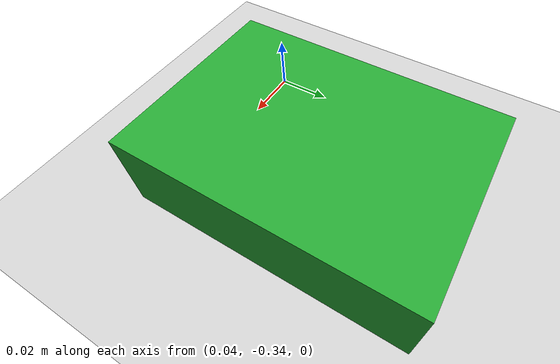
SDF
<sdf version="1.4">
 <world name="default">
  <light name="sun" type="directional">
   <pose>0 0 10 0 -0 0</pose>
   <diffuse>0.8 0.8 0.8 1</diffuse>
   <specular>0.2 0.2 0.2 1</specular>
   <attenuation>
    <range>1000</range>
    <constant>0.9</constant>
    <linear>0.01</linear>
    <quadratic>0.001</quadratic>
   </attenuation>
   <direction>-0.5 0.1 -0.9</direction>
  </light>
  <model name="ground_plane">
   <static>1</static>
   <link name="link">
    <collision name="collision">
     <geometry><plane><normal>0 0 1</normal><size>100 100</size></plane></geometry>
     <surface>
      <friction><ode><mu>1</mu><mu2>1</mu2></ode></friction>
      <contact>
       <ode>
        <kp>1e7</kp>
        <kd>10.0</kd>
        <soft_cfm>0.0</soft_cfm>
        <soft_erp>0.2</soft_erp>
        <maxVel>0.0001</maxVel>
        <minDepth>0.001</minDepth>
       </ode>
      </contact>
     </surface>
    </collision>
    <visual name="visual">
     <cast_shadows>0</cast_shadows>
     <geometry><plane><normal>0 0 1</normal><size>1000 1000</size></plane></geometry>
     <material>
      <script><uri>file://media/materials/scripts/gazebo.material</uri><name>Gazebo/Grey</name></script>
     </material>
    </visual>
    <velocity_decay><linear>0</linear><angular>0</angular></velocity_decay>
   </link>
  </model>
  <model name="cube_3cm">
   <pose>0.08 -0.3 0.015 0 -0 0</pose>
   <link name="cube_link">
    <inertial>
     <mass>10</mass>
     <inertia><ixx>1.66667</ixx><ixy>0</ixy><ixz>0</ixz><iyy>1.66667</iyy><iyz>0</iyz><izz>1.66667</izz></inertia>
    </inertial>
    <visual name="cube_3cm_visual">
     <geometry><box><size>0.07 0.10 0.03</size></box></geometry>
     <material>
      <script><uri>file://media/materials/scripts/gazebo.material</uri><name>Gazebo/Green</name></script>
      <ambient>0.3 0.3 0.3 1</ambient>
      <diffuse>0.7 0.7 0.7 1</diffuse>
      <specular>0.01 0.01 0.01 1</specular>
      <emissive>0 0 0 1</emissive>
     </material>
    </visual>
    <collision name="cube_3cm_collision">
     <max_contacts>4</max_contacts>
     <geometry><box><size>0.07 0.10 0.03</size></box></geometry>
     <surface>
      <friction>
       <ode><mu>1</mu><mu2>1</mu2><fdir1>0 0 0</fdir1><slip1>0</slip1><slip2>0</slip2></ode>
       <torsional>
        <coefficient>1</coefficient>
        <patch_radius>0</patch_radius>
        <surface_radius>0</surface_radius>
        <use_patch_radius>1</use_patch_radius>
        <ode><slip>0</slip></ode>
       </torsional>
      </friction>
      <bounce><restitution_coefficient>0</restitution_coefficient><threshold>1e+06</threshold></bounce>
      <contact>
       <collide_without_contact>0</collide_without_contact>
       <collide_without_contact_bitmask>1</collide_without_contact_bitmask>
       <collide_bitmask>1</collide_bitmask>
       <ode>
        <soft_cfm>0</soft_cfm>
        <soft_erp>0.2</soft_erp>
        <kp>2.1e+9</kp>
        <kd>1</kd>
        <max_vel>0.0</max_vel>
        <min_depth>0</min_depth>
       </ode>
      </contact>
     </surface>
    </collision>
   </link>
   <static>0</static>
  </model>
  <physics type="ode">
   <simbody>
    <accuracy>0.005</accuracy>
    <max_transient_velocity>0.005</max_transient_velocity>
    <contact><stiffness>1e8</stiffness><dissipation>20.0</dissipation></contact>
   </simbody>
   <ode>
    <solver>
     <type>quick</type>
     <iters>400</iters>
     <sor>1.25</sor>
     <friction_model>cone_model</friction_model>
    </solver>
    <constraints>
     <cfm>0.0</cfm>
     <erp>0.2</erp>
     <contact_max_correcting_vel>0.01</contact_max_correcting_vel>
     <contact_surface_layer>0.0001</contact_surface_layer>
    </constraints>
   </ode>
   <max_step_size>0.001</max_step_size>
   <real_time_factor>1</real_time_factor>
   <real_time_update_rate>1000</real_time_update_rate>
   <gravity>0 0 -9.8</gravity>
  </physics>
  <scene><ambient>0.4 0.4 0.4 1</ambient><background>0.7 0.7 0.7 1</background><shadows>1</shadows></scene>
  <spherical_coordinates>
   <surface_model>EARTH_WGS84</surface_model>
   <latitude_deg>0</latitude_deg>
   <longitude_deg>0</longitude_deg>
   <elevation>0</elevation>
   <heading_deg>0</heading_deg>
  </spherical_coordinates>
 </world>
</sdf>
